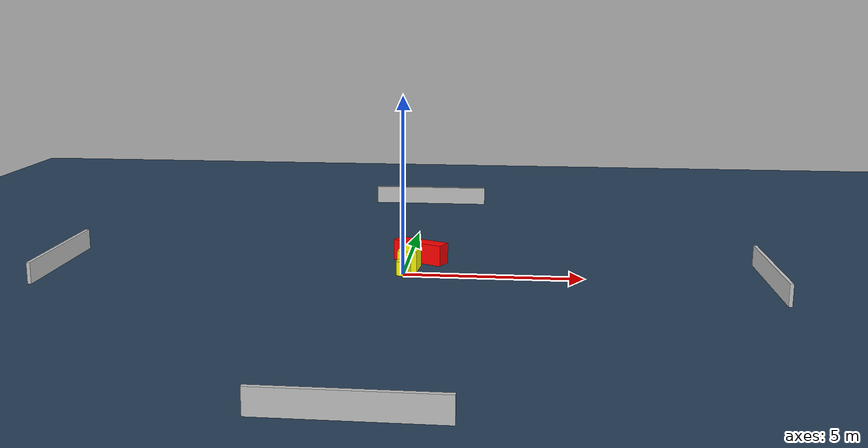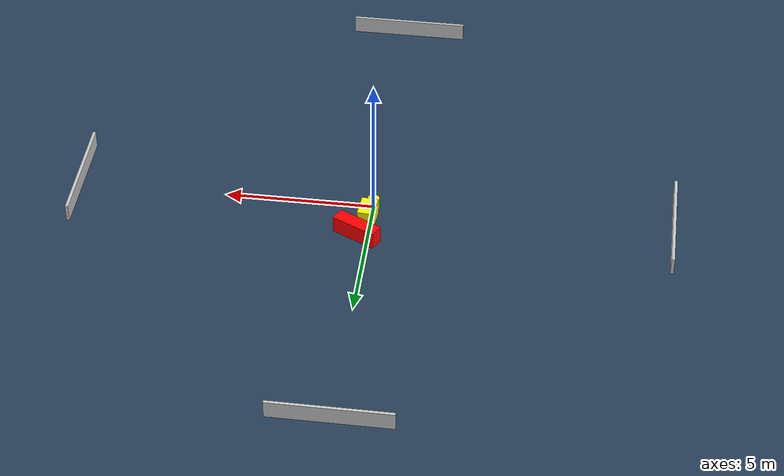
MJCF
<?xml version="1.0" ?>
<mujoco model="generated_environment">
  <option timestep="0.01" integrator="RK4" cone="elliptic"/>
  <default>
    <geom density="1"/>
  </default>
  <asset>
    <texture builtin="gradient" height="3072" name="skybox" rgb1="0.3 0.5 0.7" rgb2="0 0 0" type="skybox" width="512"/>
    <texture builtin="checker" height="300" name="groundplane" rgb1="0.2 0.3 0.4" rgb2="0.1 0.2 0.3" type="2d" width="300"/>
    <material name="groundplane" reflectance="0.2" texrepeat="5 5" texture="groundplane"/>
  </asset>
  <worldbody>
    <light dir="0 0 -1" directional="true" pos="0 0 1.5"/>
    <geom condim="3" friction="0.5 0.005 0.001" material="groundplane" name="floor" pos="0 0 0" size="0 0 0.05" type="plane"/>
    <body name="walls">
      <geom name="wall_1" condim="4" pos="-10.0 0.0 0.3" rgba="0.800000011920929 0.800000011920929 0.800000011920929 1.0" size="0.05 2.0 0.3" type="box"/>
      <geom name="wall_2" condim="4" pos="10.0 0.0 0.3" rgba="0.800000011920929 0.800000011920929 0.800000011920929 1.0" size="0.05 2.0 0.3" type="box"/>
      <geom name="wall_3" condim="4" pos="0.0 -10.0 0.3" rgba="0.800000011920929 0.800000011920929 0.800000011920929 1.0" size="2.0 0.05 0.3" type="box"/>
      <geom name="wall_4" condim="4" pos="0.0 10.0 0.3" rgba="0.800000011920929 0.800000011920929 0.800000011920929 1.0" size="2.0 0.05 0.3" type="box"/>
    </body>
    <body name="robot">
      <joint name="joint_x" type="slide" pos="0 0 0" axis="1 0 0"/>
      <joint name="joint_y" type="slide" pos="0 0 0" axis="0 1 0"/>
      <geom name="robot" type="cylinder" pos="0.0 0.0 0.2" size="0.2 0.2 0.0" mass="5.0" friction="1.0 0.005 0.0001" condim="4" rgba="1.0 1.0 0.0 1.0"/>
    </body>
    <body name="obstacle_1_movable">
      <geom name="obstacle_1_movable" condim="4" pos="0.10841150740738704 0.6557364566447945 0.3" euler="0 0 85.26969701423938" friction="0.0 0.005 0.001" rgba="1.0 1.0 0.0 1.0" size="0.3968976757114674 0.27520564919330215 0.3" type="box" mass="0.1"/>
      <joint type="free"/>
    </body>
    <body name="obstacle_2_static">
      <geom name="obstacle_2_static" condim="4" pos="0.3536831427449391 1.5152164341982473 0.3" euler="0 0 153.6913352557573" friction="0.0 0.005 0.001" rgba="1.0 0.0 0.0 1.0" size="0.7866881618581485 0.23430423925490496 0.3" type="box"/>
    </body>
  </worldbody>
  <actuator>
    <motor name="actuator_x" joint="joint_x" gear="1" ctrlrange="-1 1"/>
    <motor name="actuator_y" joint="joint_y" gear="1" ctrlrange="-1 1"/>
  </actuator>
</mujoco>
